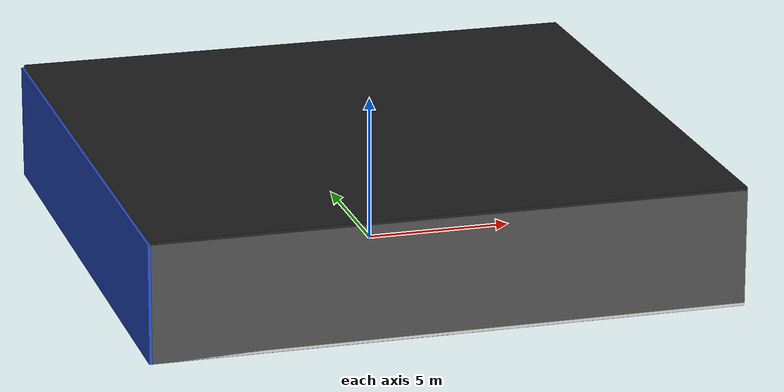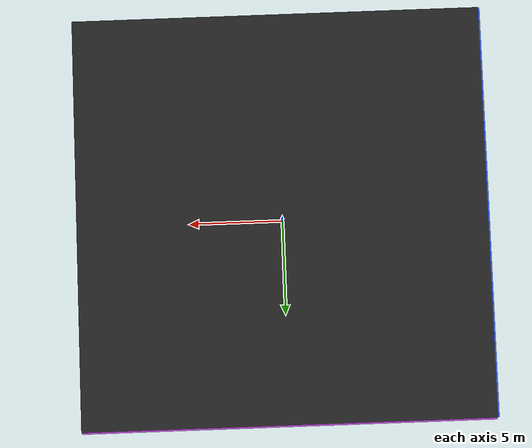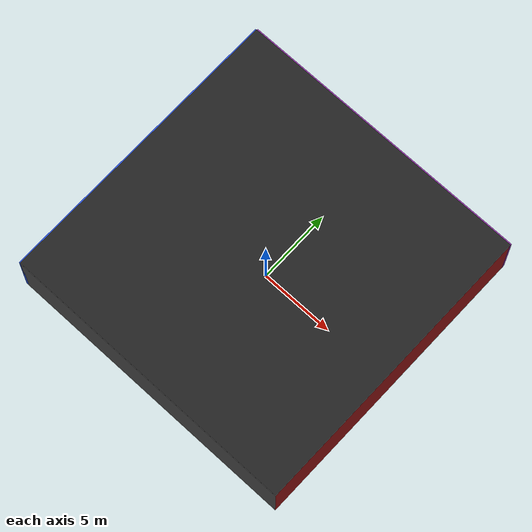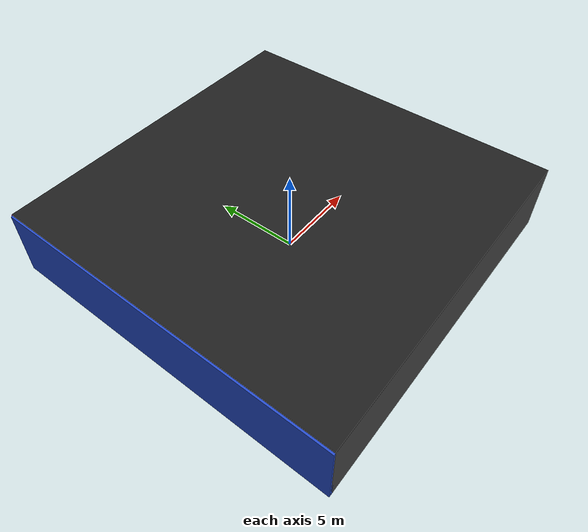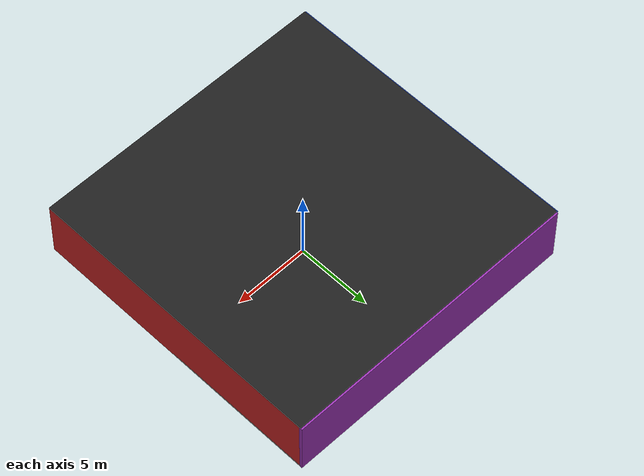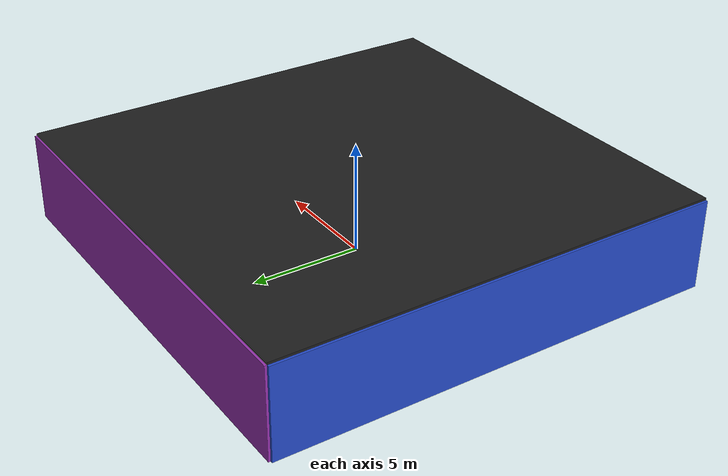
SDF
<sdf version="1.4">
 <world name="default">
  <physics type="ode">
   <max_step_size>0.001</max_step_size>
   <real_time_factor>1</real_time_factor>
   <real_time_update_rate>1000</real_time_update_rate>
   <gravity>0 0 -9.8</gravity>
  </physics>
  <scene><ambient>0.4 0.4 0.4 1</ambient><background>0.7 0.7 0.7 1</background><shadows>1</shadows></scene>
  <model name="Surrounding">
   <static>1</static>
   <link name="Ceiling">
    <collision name="Ceiling_Collision"><geometry><box><size>20 20 0.1</size></box></geometry></collision>
    <visual name="Ceiling_Visual">
     <geometry><box><size>20 20 0.1</size></box></geometry>
     <material>
      <script><uri>file://media/materials/scripts/gazebo.material</uri><name>Gazebo/Black</name></script>
     </material>
    </visual>
    <pose>0 0 4.05 0 0 0</pose>
   </link>
   <link name="Wall_South">
    <collision name="Wall_South_Collision">
     <geometry><box><size>20 0 4</size></box></geometry>
     <pose>0 0 2 0 -0 0</pose>
    </collision>
    <visual name="Wall_South_Visual">
     <pose>0 0 2 0 -0 0</pose>
     <geometry><box><size>20 0 4</size></box></geometry>
     <material>
      <script><uri>file://media/materials/scripts/gazebo.material</uri><name>Gazebo/Road</name></script>
     </material>
    </visual>
    <velocity_decay><linear>0</linear><angular>0</angular></velocity_decay>
    <pose>0 -10 0 0 -0 0</pose>
   </link>
   <link name="Wall_East">
    <collision name="Wall_21_Collision">
     <geometry><box><size>20 0 4</size></box></geometry>
     <pose>0 0 2 0 -0 0</pose>
    </collision>
    <visual name="Wall_21_Visual">
     <pose>0 0 2 0 -0 0</pose>
     <geometry><box><size>20 0 4</size></box></geometry>
     <material>
      <script><uri>file://media/materials/scripts/gazebo.material</uri><name>Gazebo/Red</name></script>
     </material>
    </visual>
    <velocity_decay><linear>0</linear><angular>0</angular></velocity_decay>
    <pose>10 0 0 0 -0 1.5708</pose>
   </link>
   <link name="Wall_North">
    <collision name="Wall_22_Collision">
     <geometry><box><size>20 0.2 4</size></box></geometry>
     <pose>0 0 2 0 -0 0</pose>
    </collision>
    <visual name="Wall_22_Visual">
     <pose>0 0 2 0 -0 0</pose>
     <geometry><box><size>20 0.2 4</size></box></geometry>
     <material>
      <script><uri>file://media/materials/scripts/gazebo.material</uri><name>Gazebo/PurpleGlow</name></script>
     </material>
    </visual>
    <velocity_decay><linear>0</linear><angular>0</angular></velocity_decay>
    <pose>0 10 0 0 -0 0</pose>
   </link>
   <link name="Wall_West">
    <collision name="Wall_23_Collision">
     <geometry><box><size>20 0.2 4</size></box></geometry>
     <pose>0 0 2 0 -0 0</pose>
    </collision>
    <visual name="Wall_23_Visual">
     <pose>0 0 2 0 -0 0</pose>
     <geometry><box><size>20 0.2 4</size></box></geometry>
     <material>
      <script><uri>file://media/materials/scripts/gazebo.material</uri><name>Gazebo/BlueLaser</name></script>
     </material>
    </visual>
    <velocity_decay><linear>0</linear><angular>0</angular></velocity_decay>
    <pose>-10 0 0 0 0 -1.5708</pose>
   </link>
   <link name="Ground_link">
    <collision name="collision">
     <pose>0 0 .05 0 -0 0</pose>
     <geometry><box><size>20 20 0.1</size></box></geometry>
    </collision>
    <visual name="visual">
     <pose>0 0 .05 0 -0 0</pose>
     <geometry><box><size>20 20 0.1</size></box></geometry>
     <material>
      <script><uri>file://media/materials/scripts/gazebo.material</uri><name>Gazebo/CeilingTiled</name></script>
     </material>
    </visual>
   </link>
   <static>1</static>
  </model>
  <spherical_coordinates>
   <surface_model>EARTH_WGS84</surface_model>
   <latitude_deg>0</latitude_deg>
   <longitude_deg>0</longitude_deg>
   <elevation>0</elevation>
   <heading_deg>0</heading_deg>
  </spherical_coordinates>
  <light name="lightball_0" type="diffuse">
   <diffuse>0.8 0.8 0.8 1</diffuse>
   <specular>0.2 0.2 0.2 1</specular>
   <attenuation>
    <range>100</range>
    <constant>0.7</constant>
    <linear>0.01</linear>
    <quadratic>0.001</quadratic>
   </attenuation>
   <direction>-0.5 0.1 -0.9</direction>
   <pose>-5.01667807163 4.23065728469 3.74976861454 0 0 0</pose>
  </light>
  <light name="lightball_1" type="diffuse">
   <diffuse>0.8 0.8 0.8 1</diffuse>
   <specular>0.2 0.2 0.2 1</specular>
   <attenuation>
    <range>100</range>
    <constant>0.7</constant>
    <linear>0.01</linear>
    <quadratic>0.001</quadratic>
   </attenuation>
   <direction>-0.5 0.1 -0.9</direction>
   <pose>7.87879988914 1.21518096888 2.70679670974 0 0 0</pose>
  </light>
  <light name="lightball_2" type="diffuse">
   <diffuse>0.8 0.8 0.8 1</diffuse>
   <specular>0.2 0.2 0.2 1</specular>
   <attenuation>
    <range>100</range>
    <constant>0.7</constant>
    <linear>0.01</linear>
    <quadratic>0.001</quadratic>
   </attenuation>
   <direction>-0.5 0.1 -0.9</direction>
   <pose>-7.41350099414 -2.08847488187 3.8203180301 0 0 0</pose>
  </light>
  <light name="lightball_3" type="diffuse">
   <diffuse>0.8 0.8 0.8 1</diffuse>
   <specular>0.2 0.2 0.2 1</specular>
   <attenuation>
    <range>100</range>
    <constant>0.7</constant>
    <linear>0.01</linear>
    <quadratic>0.001</quadratic>
   </attenuation>
   <direction>-0.5 0.1 -0.9</direction>
   <pose>-8.01418076401 -2.15701482378 2.16982764356 0 0 0</pose>
  </light>
  <light name="lightball_4" type="diffuse">
   <diffuse>0.8 0.8 0.8 1</diffuse>
   <specular>0.2 0.2 0.2 1</specular>
   <attenuation>
    <range>100</range>
    <constant>0.7</constant>
    <linear>0.01</linear>
    <quadratic>0.001</quadratic>
   </attenuation>
   <direction>-0.5 0.1 -0.9</direction>
   <pose>5.62224900418 9.90383420015 1.06124851586 0 0 0</pose>
  </light>
  <light name="lightball_5" type="diffuse">
   <diffuse>0.8 0.8 0.8 1</diffuse>
   <specular>0.2 0.2 0.2 1</specular>
   <attenuation>
    <range>100</range>
    <constant>0.7</constant>
    <linear>0.01</linear>
    <quadratic>0.001</quadratic>
   </attenuation>
   <direction>-0.5 0.1 -0.9</direction>
   <pose>1.19633850201 1.48837831168 3.49024499208 0 0 0</pose>
  </light>
  <light name="lightball_6" type="diffuse">
   <diffuse>0.8 0.8 0.8 1</diffuse>
   <specular>0.2 0.2 0.2 1</specular>
   <attenuation>
    <range>100</range>
    <constant>0.7</constant>
    <linear>0.01</linear>
    <quadratic>0.001</quadratic>
   </attenuation>
   <direction>-0.5 0.1 -0.9</direction>
   <pose>-6.13842730793 -4.20324267345 1.98939857959 0 0 0</pose>
  </light>
  <light name="lightball_7" type="diffuse">
   <diffuse>0.8 0.8 0.8 1</diffuse>
   <specular>0.2 0.2 0.2 1</specular>
   <attenuation>
    <range>100</range>
    <constant>0.7</constant>
    <linear>0.01</linear>
    <quadratic>0.001</quadratic>
   </attenuation>
   <direction>-0.5 0.1 -0.9</direction>
   <pose>2.56055483665 -3.65404054807 3.01750055642 0 0 0</pose>
  </light>
  <light name="lightball_8" type="diffuse">
   <diffuse>0.8 0.8 0.8 1</diffuse>
   <specular>0.2 0.2 0.2 1</specular>
   <attenuation>
    <range>100</range>
    <constant>0.7</constant>
    <linear>0.01</linear>
    <quadratic>0.001</quadratic>
   </attenuation>
   <direction>-0.5 0.1 -0.9</direction>
   <pose>6.7076951349 3.99104123255 0.870546312078 0 0 0</pose>
  </light>
  <light name="lightball_9" type="diffuse">
   <diffuse>0.8 0.8 0.8 1</diffuse>
   <specular>0.2 0.2 0.2 1</specular>
   <attenuation>
    <range>100</range>
    <constant>0.7</constant>
    <linear>0.01</linear>
    <quadratic>0.001</quadratic>
   </attenuation>
   <direction>-0.5 0.1 -0.9</direction>
   <pose>-4.12652440839 4.93471009021 2.47438168341 0 0 0</pose>
  </light>
  <light name="lightball_10" type="diffuse">
   <diffuse>0.8 0.8 0.8 1</diffuse>
   <specular>0.2 0.2 0.2 1</specular>
   <attenuation>
    <range>100</range>
    <constant>0.7</constant>
    <linear>0.01</linear>
    <quadratic>0.001</quadratic>
   </attenuation>
   <direction>-0.5 0.1 -0.9</direction>
   <pose>-2.70976753115 1.19094141125 3.77132253935 0 0 0</pose>
  </light>
  <light name="lightball_11" type="diffuse">
   <diffuse>0.8 0.8 0.8 1</diffuse>
   <specular>0.2 0.2 0.2 1</specular>
   <attenuation>
    <range>100</range>
    <constant>0.7</constant>
    <linear>0.01</linear>
    <quadratic>0.001</quadratic>
   </attenuation>
   <direction>-0.5 0.1 -0.9</direction>
   <pose>3.68838293667 6.58828691125 3.15433361156 0 0 0</pose>
  </light>
  <light name="lightball_12" type="diffuse">
   <diffuse>0.8 0.8 0.8 1</diffuse>
   <specular>0.2 0.2 0.2 1</specular>
   <attenuation>
    <range>100</range>
    <constant>0.7</constant>
    <linear>0.01</linear>
    <quadratic>0.001</quadratic>
   </attenuation>
   <direction>-0.5 0.1 -0.9</direction>
   <pose>3.97292977256 -4.38571647843 2.68657952097 0 0 0</pose>
  </light>
  <include><uri>model://cabinet</uri><pose>-7.25584999242 3.4878793333 0 0 0 1.32197015092</pose></include>
  <include><uri>model://cabinet</uri><pose>-5.50283052401 4.18369056723 0 0 0 2.44314345438</pose></include>
  <include>
   <uri>model://construction_cone</uri>
   <pose>1.27670975753 3.77690277079 0 0 0 1.80461714987</pose>
  </include>
  <include>
   <uri>model://construction_cone</uri>
   <pose>4.29804566296 -6.60584219084 0 0 0 0.4396149417</pose>
  </include>
 </world>
</sdf>

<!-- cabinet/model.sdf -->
<sdf version="1.5">
  <model name="cabinet">
    <static>true</static>
    <link name="cabinet_bottom_plate">
      <inertial>
        <pose>0 0 -1 0 0 0</pose>
        <inertia>
          <ixx>2.050000</ixx>
          <ixy>0</ixy>
          <ixz>0</ixz>
          <iyy>2.050000</iyy>
          <iyz>0</iyz>
          <izz>2.050000</izz>
        </inertia>
        <mass>25.000000</mass>
      </inertial>
      <collision name="cabinet_bottom_plate_geom">
        <pose>0 0 0.010000 0 0 0</pose>
        <geometry>
          <box>
            <size>0.450000 0.450000 0.020000</size>
          </box>
        </geometry>
      </collision>
      <visual name="cabinet_bottom_plate_geom_visual">
        <pose>0 0 0.010000 0 0 0</pose>
        <geometry>
          <box>
            <size>0.450000 0.450000 0.020000</size>
          </box>
        </geometry>
        <material>
          <script>
            <uri>model://media/materials/scripts/gazebo.material</uri>
            <name>Gazebo/Wood</name>
          </script>
        </material>
      </visual>
      <collision name="cabinet_bottom_plate_geom_cabinet_back_plate">
        <pose>0.235000 0 0.510000 0 0 0</pose>
        <geometry>
          <box>
            <size>0.020000 0.450000 1.020000</size>
          </box>
        </geometry>
      </collision>
      <visual name="cabinet_bottom_plate_geom_cabinet_back_plate_visual">
        <pose>0.235000 0 0.510000 0 0 0</pose>
        <geometry>
          <box>
            <size>0.020000 0.450000 1.020000</size>
          </box>
        </geometry>
        <material>
          <script>
            <uri>model://media/materials/scripts/gazebo.material</uri>
            <name>Gazebo/Wood</name>
          </script>
        </material>
      </visual>
      <collision name="cabinet_bottom_plate_geom_cabinet_left_plate">
        <pose>0 0.235000 0.510000 0 0 0</pose>
        <geometry>
          <box>
            <size>0.450000 0.020000 1.020000</size>
          </box>
        </geometry>
      </collision>
      <visual name="cabinet_bottom_plate_geom_cabinet_left_plate_visual">
        <pose>0 0.235000 0.510000 0 0 0</pose>
        <geometry>
          <box>
            <size>0.450000 0.020000 1.020000</size>
          </box>
        </geometry>
        <material>
          <script>
            <uri>model://media/materials/scripts/gazebo.material</uri>
            <name>Gazebo/Wood</name>
          </script>
        </material>
      </visual>
      <collision name="cabinet_bottom_plate_geom_cabinet_middle_plate">
        <pose>0 0 0.510000 0 0 0</pose>
        <geometry>
          <box>
            <size>0.450000 0.450000 0.020000</size>
          </box>
        </geometry>
      </collision>
      <visual name="cabinet_bottom_plate_geom_cabinet_middle_plate_visual">
        <pose>0 0 0.510000 0 0 0</pose>
        <geometry>
          <box>
            <size>0.450000 0.450000 0.020000</size>
          </box>
        </geometry>
        <material>
          <script>
            <uri>model://media/materials/scripts/gazebo.material</uri>
            <name>Gazebo/Wood</name>
          </script>
        </material>
      </visual>
      <collision name="cabinet_bottom_plate_geom_cabinet_right_plate">
        <pose>0 -0.235000 0.510000 0 0 0</pose>
        <geometry>
          <box>
            <size>0.450000 0.020000 1.020000</size>
          </box>
        </geometry>
      </collision>
      <visual name="cabinet_bottom_plate_geom_cabinet_right_plate_visual">
        <pose>0 -0.235000 0.510000 0 0 0</pose>
        <geometry>
          <box>
            <size>0.450000 0.020000 1.020000</size>
          </box>
        </geometry>
        <material>
          <script>
            <uri>model://media/materials/scripts/gazebo.material</uri>
            <name>Gazebo/Wood</name>
          </script>
        </material>
      </visual>
      <collision name="cabinet_bottom_plate_geom_cabinet_top_plate">
        <pose>0 0 1.010000 0 0 0</pose>
        <geometry>
          <box>
            <size>0.450000 0.450000 0.020000</size>
          </box>
        </geometry>
      </collision>
      <visual name="cabinet_bottom_plate_geom_cabinet_top_plate_visual">
        <pose>0 0 1.010000 0 0 0</pose>
        <geometry>
          <box>
            <size>0.450000 0.450000 0.020000</size>
          </box>
        </geometry>
        <material>
          <script>
            <uri>model://media/materials/scripts/gazebo.material</uri>
            <name>Gazebo/Wood</name>
          </script>
        </material>
      </visual>
    </link>
  </model>
</sdf>

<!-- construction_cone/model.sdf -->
<sdf version="1.5">
  <model name="Construction Cone">
    <link name="link">
      <collision name="collision">
        <geometry>
          <mesh>
            <scale>10 10 10</scale>
            <uri>file://isr-testbed/construction_cone/meshes/construction_cone.dae</uri>
          </mesh>
        </geometry>
      </collision>
      <visual name="visual">
        <geometry>
          <mesh>
            <scale>10 10 10</scale>
            <uri>file://isr-testbed/construction_cone/meshes/construction_cone.dae</uri>
          </mesh>
        </geometry>
      </visual>
    </link>
  </model>
</sdf>
